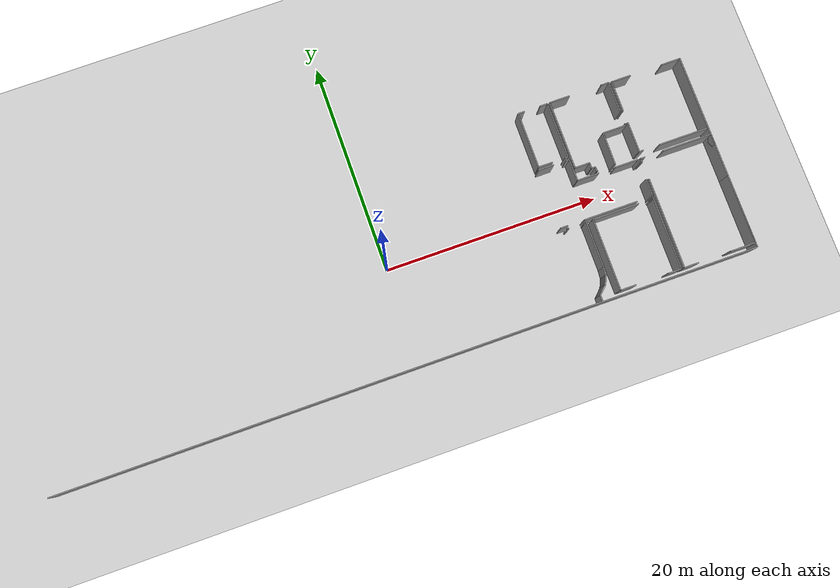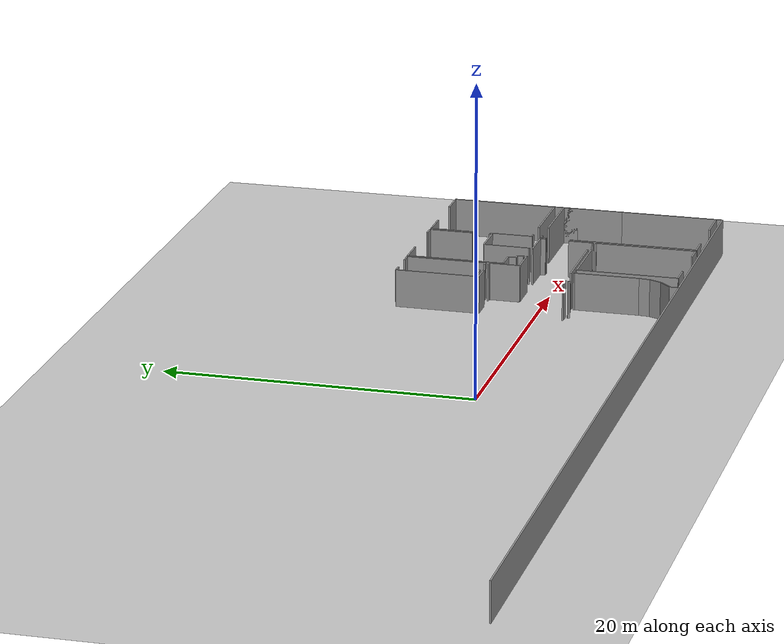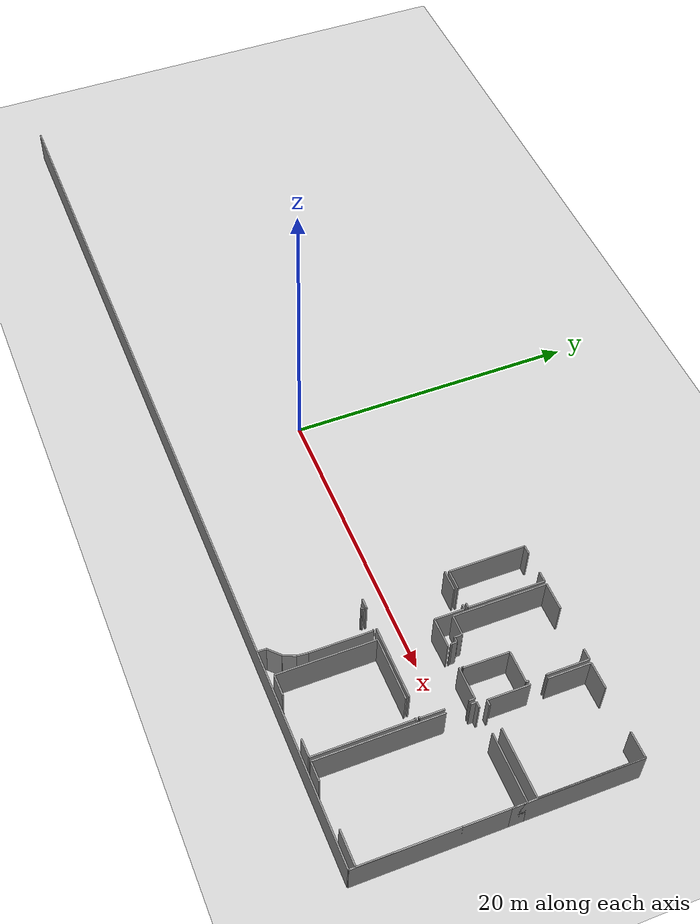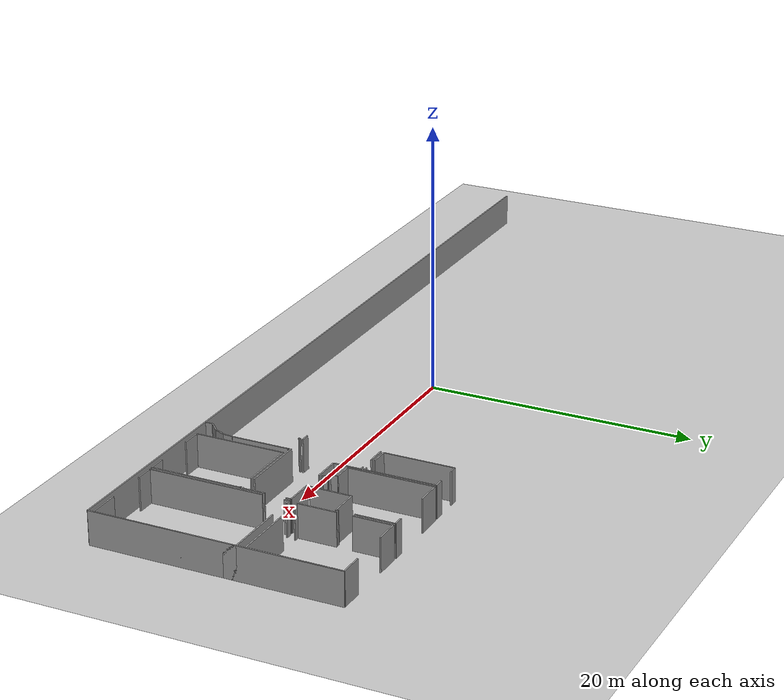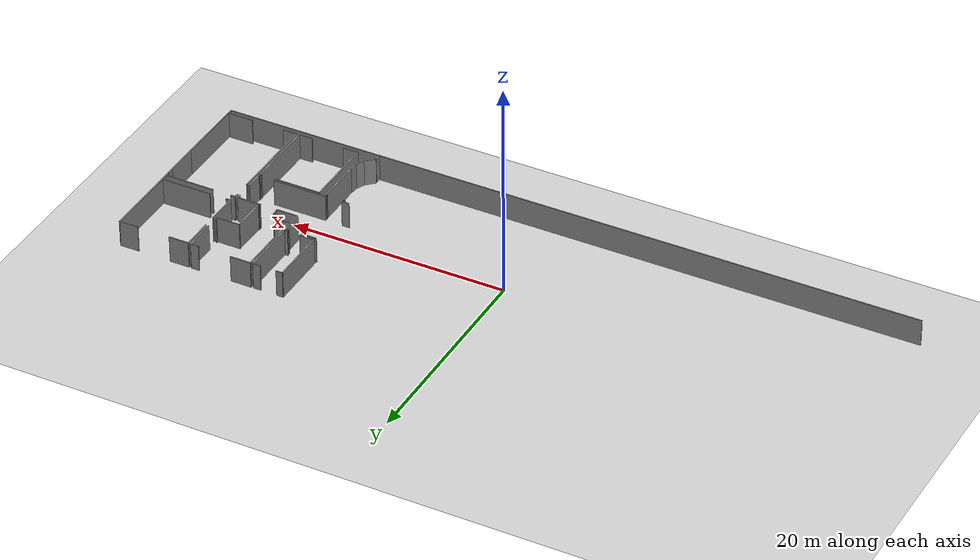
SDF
<sdf version="1.6">
 <world name="default">
  <model name="ground_plane">
   <static>1</static>
   <link name="link">
    <collision name="collision">
     <geometry><plane><normal>0 0 1</normal><size>100 100</size></plane></geometry>
     <surface><friction><ode><mu>100</mu><mu2>50</mu2></ode></friction></surface>
    </collision>
    <visual name="visual">
     <cast_shadows>0</cast_shadows>
     <geometry><plane><normal>0 0 1</normal><size>100 100</size></plane></geometry>
     <material>
      <script><uri>file://media/materials/scripts/gazebo.material</uri><name>Gazebo/Grey</name></script>
     </material>
    </visual>
   </link>
  </model>
  <model name="0510034870_A-40">
   <static>1</static>
   <link name="Wall_176">
    <collision name="Wall_176_Collision">
     <geometry><box><size>0.13214600801 0.1 2.5</size></box></geometry>
     <pose>0.066073004005 0 1.25 0 0 0</pose>
    </collision>
    <visual name="Wall_176_Visual">
     <pose>0.066073004005 0 1.25 0 0 0</pose>
     <geometry><box><size>0.13214600801 0.1 2.5</size></box></geometry>
     <material>
      <script><uri>file://media/materials/scripts/gazebo.material</uri><name>Gazebo/Grey</name></script>
      <ambient>1 1 1 1</ambient>
     </material>
    </visual>
    <pose>49.8676635799 -11.4529079104 0 0 0 1.57079632679</pose>
   </link>
   <link name="Wall_177">
    <collision name="Wall_177_Collision">
     <geometry><box><size>0.0987604171295 0.1 2.5</size></box></geometry>
     <pose>0.0493802085647 0 1.25 0 0 0</pose>
    </collision>
    <visual name="Wall_177_Visual">
     <pose>0.0493802085647 0 1.25 0 0 0</pose>
     <geometry><box><size>0.0987604171295 0.1 2.5</size></box></geometry>
     <material>
      <script><uri>file://media/materials/scripts/gazebo.material</uri><name>Gazebo/Grey</name></script>
      <ambient>1 1 1 1</ambient>
     </material>
    </visual>
    <pose>49.8676635799 -11.3207619023 0 0 0 0.0</pose>
   </link>
   <link name="Wall_178">
    <collision name="Wall_178_Collision">
     <geometry><box><size>0.0946982920033 0.1 2.5</size></box></geometry>
     <pose>0.0473491460017 0 1.25 0 0 0</pose>
    </collision>
    <visual name="Wall_178_Visual">
     <pose>0.0473491460017 0 1.25 0 0 0</pose>
     <geometry><box><size>0.0946982920033 0.1 2.5</size></box></geometry>
     <material>
      <script><uri>file://media/materials/scripts/gazebo.material</uri><name>Gazebo/Grey</name></script>
      <ambient>1 1 1 1</ambient>
     </material>
    </visual>
    <pose>51.5077465996 -11.3207619023 0 0 0 0.0</pose>
   </link>
   <link name="Wall_179">
    <collision name="Wall_179_Collision">
     <geometry><box><size>4.27513281245 0.1 2.5</size></box></geometry>
     <pose>2.13756640623 0 1.25 0 0 0</pose>
    </collision>
    <visual name="Wall_179_Visual">
     <pose>2.13756640623 0 1.25 0 0 0</pose>
     <geometry><box><size>4.27513281245 0.1 2.5</size></box></geometry>
     <material>
      <script><uri>file://media/materials/scripts/gazebo.material</uri><name>Gazebo/Grey</name></script>
      <ambient>1 1 1 1</ambient>
     </material>
    </visual>
    <pose>51.6024448916 -11.3207619023 0 0 0 -1.57079632679</pose>
   </link>
   <link name="Wall_180">
    <collision name="Wall_180_Collision">
     <geometry><box><size>0.733440796288 0.1 2.5</size></box></geometry>
     <pose>0.366720398144 0 1.25 0 0 0</pose>
    </collision>
    <visual name="Wall_180_Visual">
     <pose>0.366720398144 0 1.25 0 0 0</pose>
     <geometry><box><size>0.733440796288 0.1 2.5</size></box></geometry>
     <material>
      <script><uri>file://media/materials/scripts/gazebo.material</uri><name>Gazebo/Grey</name></script>
      <ambient>1 1 1 1</ambient>
     </material>
    </visual>
    <pose>51.6024448916 -15.5958947148 0 0 0 -1.66891502014</pose>
   </link>
   <link name="Wall_181">
    <collision name="Wall_181_Collision">
     <geometry><box><size>0.864874148767 0.1 2.5</size></box></geometry>
     <pose>0.432437074384 0 1.25 0 0 0</pose>
    </collision>
    <visual name="Wall_181_Visual">
     <pose>0.432437074384 0 1.25 0 0 0</pose>
     <geometry><box><size>0.864874148767 0.1 2.5</size></box></geometry>
     <material>
      <script><uri>file://media/materials/scripts/gazebo.material</uri><name>Gazebo/Grey</name></script>
      <ambient>1 1 1 1</ambient>
     </material>
    </visual>
    <pose>51.5305960534 -16.3258078234 0 0 0 -1.98900575369</pose>
   </link>
   <link name="Wall_182">
    <collision name="Wall_182_Collision">
     <geometry><box><size>1.04401392143 0.1 2.5</size></box></geometry>
     <pose>0.522006960714 0 1.25 0 0 0</pose>
    </collision>
    <visual name="Wall_182_Visual">
     <pose>0.522006960714 0 1.25 0 0 0</pose>
     <geometry><box><size>1.04401392143 0.1 2.5</size></box></geometry>
     <material>
      <script><uri>file://media/materials/scripts/gazebo.material</uri><name>Gazebo/Grey</name></script>
      <ambient>1 1 1 1</ambient>
     </material>
    </visual>
    <pose>51.1793491714 -17.1161450433 0 0 0 -2.37485257072</pose>
   </link>
   <link name="Wall_183">
    <collision name="Wall_183_Collision">
     <geometry><box><size>0.593286317472 0.1 2.5</size></box></geometry>
     <pose>0.296643158736 0 1.25 0 0 0</pose>
    </collision>
    <visual name="Wall_183_Visual">
     <pose>0.296643158736 0 1.25 0 0 0</pose>
     <geometry><box><size>0.593286317472 0.1 2.5</size></box></geometry>
     <material>
      <script><uri>file://media/materials/scripts/gazebo.material</uri><name>Gazebo/Grey</name></script>
      <ambient>1 1 1 1</ambient>
     </material>
    </visual>
    <pose>50.4274751988 -17.8404727298 0 0 0 -1.58812820978</pose>
   </link>
   <link name="Wall_184">
    <collision name="Wall_184_Collision">
     <geometry><box><size>0.109804319816 0.1 2.5</size></box></geometry>
     <pose>0.0549021599081 0 1.25 0 0 0</pose>
    </collision>
    <visual name="Wall_184_Visual">
     <pose>0.0549021599081 0 1.25 0 0 0</pose>
     <geometry><box><size>0.109804319816 0.1 2.5</size></box></geometry>
     <material>
      <script><uri>file://media/materials/scripts/gazebo.material</uri><name>Gazebo/Grey</name></script>
      <ambient>1 1 1 1</ambient>
     </material>
    </visual>
    <pose>58.0228875363 -11.1011532627 0 0 0 3.14159265359</pose>
   </link>
   <link name="Wall_185">
    <collision name="Wall_185_Collision">
     <geometry><box><size>5.02243689425 0.1 2.5</size></box></geometry>
     <pose>2.51121844713 0 1.25 0 0 0</pose>
    </collision>
    <visual name="Wall_185_Visual">
     <pose>2.51121844713 0 1.25 0 0 0</pose>
     <geometry><box><size>5.02243689425 0.1 2.5</size></box></geometry>
     <material>
      <script><uri>file://media/materials/scripts/gazebo.material</uri><name>Gazebo/Grey</name></script>
      <ambient>1 1 1 1</ambient>
     </material>
    </visual>
    <pose>56.5399579824 -11.1011532627 0 0 0 3.14159265359</pose>
   </link>
   <link name="Wall_186">
    <collision name="Wall_186_Collision">
     <geometry><box><size>0.704017060926 0.1 2.5</size></box></geometry>
     <pose>0.352008530463 0 1.25 0 0 0</pose>
    </collision>
    <visual name="Wall_186_Visual">
     <pose>0.352008530463 0 1.25 0 0 0</pose>
     <geometry><box><size>0.704017060926 0.1 2.5</size></box></geometry>
     <material>
      <script><uri>file://media/materials/scripts/gazebo.material</uri><name>Gazebo/Grey</name></script>
      <ambient>1 1 1 1</ambient>
     </material>
    </visual>
    <pose>49.9671856455 -11.1011532627 0 0 0 3.14159265359</pose>
   </link>
   <link name="Wall_188">
    <collision name="Wall_188_Collision">
     <geometry><box><size>1.44306995106 0.1 2.5</size></box></geometry>
     <pose>0.721534975532 0 1.25 0 0 0</pose>
    </collision>
    <visual name="Wall_188_Visual">
     <pose>0.721534975532 0 1.25 0 0 0</pose>
     <geometry><box><size>1.44306995106 0.1 2.5</size></box></geometry>
     <material>
      <script><uri>file://media/materials/scripts/gazebo.material</uri><name>Gazebo/Grey</name></script>
      <ambient>1 1 1 1</ambient>
     </material>
    </visual>
    <pose>49.2631685845 -5.51852392528 0 0 0 0.0</pose>
   </link>
   <link name="Wall_189">
    <collision name="Wall_189_Collision">
     <geometry><box><size>0.325604717143 0.1 2.5</size></box></geometry>
     <pose>0.162802358571 0 1.25 0 0 0</pose>
    </collision>
    <visual name="Wall_189_Visual">
     <pose>0.162802358571 0 1.25 0 0 0</pose>
     <geometry><box><size>0.325604717143 0.1 2.5</size></box></geometry>
     <material>
      <script><uri>file://media/materials/scripts/gazebo.material</uri><name>Gazebo/Grey</name></script>
      <ambient>1 1 1 1</ambient>
     </material>
    </visual>
    <pose>51.8861589433 -5.51852392528 0 0 0 0.0</pose>
   </link>
   <link name="Wall_190">
    <collision name="Wall_190_Collision">
     <geometry><box><size>2.03118950448 0.1 2.5</size></box></geometry>
     <pose>1.01559475224 0 1.25 0 0 0</pose>
    </collision>
    <visual name="Wall_190_Visual">
     <pose>1.01559475224 0 1.25 0 0 0</pose>
     <geometry><box><size>2.03118950448 0.1 2.5</size></box></geometry>
     <material>
      <script><uri>file://media/materials/scripts/gazebo.material</uri><name>Gazebo/Grey</name></script>
      <ambient>1 1 1 1</ambient>
     </material>
    </visual>
    <pose>52.2117636605 -5.51852392528 0 0 0 -1.57079632679</pose>
   </link>
   <link name="Wall_191">
    <collision name="Wall_191_Collision">
     <geometry><box><size>2.04489917678 0.1 2.5</size></box></geometry>
     <pose>1.02244958839 0 1.25 0 0 0</pose>
    </collision>
    <visual name="Wall_191_Visual">
     <pose>1.02244958839 0 1.25 0 0 0</pose>
     <geometry><box><size>2.04489917678 0.1 2.5</size></box></geometry>
     <material>
      <script><uri>file://media/materials/scripts/gazebo.material</uri><name>Gazebo/Grey</name></script>
      <ambient>1 1 1 1</ambient>
     </material>
    </visual>
    <pose>52.2117636605 -7.54971342977 0 0 0 0.0</pose>
   </link>
   <link name="Wall_192">
    <collision name="Wall_192_Collision">
     <geometry><box><size>2.20649559196 0.1 2.5</size></box></geometry>
     <pose>1.10324779598 0 1.25 0 0 0</pose>
    </collision>
    <visual name="Wall_192_Visual">
     <pose>1.10324779598 0 1.25 0 0 0</pose>
     <geometry><box><size>2.20649559196 0.1 2.5</size></box></geometry>
     <material>
      <script><uri>file://media/materials/scripts/gazebo.material</uri><name>Gazebo/Grey</name></script>
      <ambient>1 1 1 1</ambient>
     </material>
    </visual>
    <pose>55.8170266513 -7.54971342977 0 0 0 0.0</pose>
   </link>
   <link name="Wall_193">
    <collision name="Wall_193_Collision">
     <geometry><box><size>0.375873515579 0.1 2.5</size></box></geometry>
     <pose>0.187936757789 0 1.25 0 0 0</pose>
    </collision>
    <visual name="Wall_193_Visual">
     <pose>0.187936757789 0 1.25 0 0 0</pose>
     <geometry><box><size>0.375873515579 0.1 2.5</size></box></geometry>
     <material>
      <script><uri>file://media/materials/scripts/gazebo.material</uri><name>Gazebo/Grey</name></script>
      <ambient>1 1 1 1</ambient>
     </material>
    </visual>
    <pose>58.0235222433 -7.54971342977 0 0 0 -1.57079632679</pose>
   </link>
   <link name="Wall_194">
    <collision name="Wall_194_Collision">
     <geometry><box><size>1.62345381902 0.1 2.5</size></box></geometry>
     <pose>0.81172690951 0 1.25 0 0 0</pose>
    </collision>
    <visual name="Wall_194_Visual">
     <pose>0.81172690951 0 1.25 0 0 0</pose>
     <geometry><box><size>1.62345381902 0.1 2.5</size></box></geometry>
     <material>
      <script><uri>file://media/materials/scripts/gazebo.material</uri><name>Gazebo/Grey</name></script>
      <ambient>1 1 1 1</ambient>
     </material>
    </visual>
    <pose>58.0235222433 -9.47769956776 0 0 0 -1.57118728776</pose>
   </link>
   <link name="Wall_195">
    <collision name="Wall_195_Collision">
     <geometry><box><size>0.31735352548 0.1 2.5</size></box></geometry>
     <pose>0.15867676274 0 1.25 0 0 0</pose>
    </collision>
    <visual name="Wall_195_Visual">
     <pose>0.15867676274 0 1.25 0 0 0</pose>
     <geometry><box><size>0.31735352548 0.1 2.5</size></box></geometry>
     <material>
      <script><uri>file://media/materials/scripts/gazebo.material</uri><name>Gazebo/Grey</name></script>
      <ambient>1 1 1 1</ambient>
     </material>
    </visual>
    <pose>52.1881525582 -5.26197533528 0 0 0 3.14159265359</pose>
   </link>
   <link name="Wall_196">
    <collision name="Wall_196_Collision">
     <geometry><box><size>1.34380176829 0.1 2.5</size></box></geometry>
     <pose>0.671900884147 0 1.25 0 0 0</pose>
    </collision>
    <visual name="Wall_196_Visual">
     <pose>0.671900884147 0 1.25 0 0 0</pose>
     <geometry><box><size>1.34380176829 0.1 2.5</size></box></geometry>
     <material>
      <script><uri>file://media/materials/scripts/gazebo.material</uri><name>Gazebo/Grey</name></script>
      <ambient>1 1 1 1</ambient>
     </material>
    </visual>
    <pose>50.7092851294 -5.26197533528 0 0 0 3.14159265359</pose>
   </link>
   <link name="Wall_197">
    <collision name="Wall_197_Collision">
     <geometry><box><size>5.24661542465 0.1 2.5</size></box></geometry>
     <pose>2.62330771233 0 1.25 0 0 0</pose>
    </collision>
    <visual name="Wall_197_Visual">
     <pose>2.62330771233 0 1.25 0 0 0</pose>
     <geometry><box><size>5.24661542465 0.1 2.5</size></box></geometry>
     <material>
      <script><uri>file://media/materials/scripts/gazebo.material</uri><name>Gazebo/Grey</name></script>
      <ambient>1 1 1 1</ambient>
     </material>
    </visual>
    <pose>49.3654833612 -5.26197533528 0 0 0 1.57079632679</pose>
   </link>
   <link name="Wall_198">
    <collision name="Wall_198_Collision">
     <geometry><box><size>0.595482155211 0.1 2.5</size></box></geometry>
     <pose>0.297741077606 0 1.25 0 0 0</pose>
    </collision>
    <visual name="Wall_198_Visual">
     <pose>0.297741077606 0 1.25 0 0 0</pose>
     <geometry><box><size>0.595482155211 0.1 2.5</size></box></geometry>
     <material>
      <script><uri>file://media/materials/scripts/gazebo.material</uri><name>Gazebo/Grey</name></script>
      <ambient>1 1 1 1</ambient>
     </material>
    </visual>
    <pose>49.3654833612 -0.0153599106332 0 0 0 0.0</pose>
   </link>
   <link name="Wall_199">
    <collision name="Wall_199_Collision">
     <geometry><box><size>0.71341072528 0.1 2.5</size></box></geometry>
     <pose>0.35670536264 0 1.25 0 0 0</pose>
    </collision>
    <visual name="Wall_199_Visual">
     <pose>0.35670536264 0 1.25 0 0 0</pose>
     <geometry><box><size>0.71341072528 0.1 2.5</size></box></geometry>
     <material>
      <script><uri>file://media/materials/scripts/gazebo.material</uri><name>Gazebo/Grey</name></script>
      <ambient>1 1 1 1</ambient>
     </material>
    </visual>
    <pose>51.4647134615 -0.0153599106332 0 0 0 0.0</pose>
   </link>
   <link name="Wall_200">
    <collision name="Wall_200_Collision">
     <geometry><box><size>5.24662500875 0.1 2.5</size></box></geometry>
     <pose>2.62331250437 0 1.25 0 0 0</pose>
    </collision>
    <visual name="Wall_200_Visual">
     <pose>2.62331250437 0 1.25 0 0 0</pose>
     <geometry><box><size>5.24662500875 0.1 2.5</size></box></geometry>
     <material>
      <script><uri>file://media/materials/scripts/gazebo.material</uri><name>Gazebo/Grey</name></script>
      <ambient>1 1 1 1</ambient>
     </material>
    </visual>
    <pose>52.1781241868 -0.0153599106332 0 0 0 -1.5688849309</pose>
   </link>
   <link name="Wall_201">
    <collision name="Wall_201_Collision">
     <geometry><box><size>0.0948252334135 0.1 2.5</size></box></geometry>
     <pose>0.0474126167068 0 1.25 0 0 0</pose>
    </collision>
    <visual name="Wall_201_Visual">
     <pose>0.0474126167068 0 1.25 0 0 0</pose>
     <geometry><box><size>0.0948252334135 0.1 2.5</size></box></geometry>
     <material>
      <script><uri>file://media/materials/scripts/gazebo.material</uri><name>Gazebo/Grey</name></script>
      <ambient>1 1 1 1</ambient>
     </material>
    </visual>
    <pose>55.9114710605 -7.32324995398 0 0 0 3.14159265359</pose>
   </link>
   <link name="Wall_202">
    <collision name="Wall_202_Collision">
     <geometry><box><size>0.0917786395689 0.1 2.5</size></box></geometry>
     <pose>0.0458893197845 0 1.25 0 0 0</pose>
    </collision>
    <visual name="Wall_202_Visual">
     <pose>0.0458893197845 0 1.25 0 0 0</pose>
     <geometry><box><size>0.0917786395689 0.1 2.5</size></box></geometry>
     <material>
      <script><uri>file://media/materials/scripts/gazebo.material</uri><name>Gazebo/Grey</name></script>
      <ambient>1 1 1 1</ambient>
     </material>
    </visual>
    <pose>54.2482847042 -7.32324995398 0 0 0 3.14159265359</pose>
   </link>
   <link name="Wall_203">
    <collision name="Wall_203_Collision">
     <geometry><box><size>0.399611559285 0.1 2.5</size></box></geometry>
     <pose>0.199805779642 0 1.25 0 0 0</pose>
    </collision>
    <visual name="Wall_203_Visual">
     <pose>0.199805779642 0 1.25 0 0 0</pose>
     <geometry><box><size>0.399611559285 0.1 2.5</size></box></geometry>
     <material>
      <script><uri>file://media/materials/scripts/gazebo.material</uri><name>Gazebo/Grey</name></script>
      <ambient>1 1 1 1</ambient>
     </material>
    </visual>
    <pose>54.1565060646 -7.32324995398 0 0 0 1.57079632679</pose>
   </link>
   <link name="Wall_204">
    <collision name="Wall_204_Collision">
     <geometry><box><size>0.358990308023 0.1 2.5</size></box></geometry>
     <pose>0.179495154012 0 1.25 0 0 0</pose>
    </collision>
    <visual name="Wall_204_Visual">
     <pose>0.179495154012 0 1.25 0 0 0</pose>
     <geometry><box><size>0.358990308023 0.1 2.5</size></box></geometry>
     <material>
      <script><uri>file://media/materials/scripts/gazebo.material</uri><name>Gazebo/Grey</name></script>
      <ambient>1 1 1 1</ambient>
     </material>
    </visual>
    <pose>54.1565060646 -6.9236383947 0 0 0 3.14159265359</pose>
   </link>
   <link name="Wall_205">
    <collision name="Wall_205_Collision">
     <geometry><box><size>0.525791321016 0.1 2.5</size></box></geometry>
     <pose>0.262895660508 0 1.25 0 0 0</pose>
    </collision>
    <visual name="Wall_205_Visual">
     <pose>0.262895660508 0 1.25 0 0 0</pose>
     <geometry><box><size>0.525791321016 0.1 2.5</size></box></geometry>
     <material>
      <script><uri>file://media/materials/scripts/gazebo.material</uri><name>Gazebo/Grey</name></script>
      <ambient>1 1 1 1</ambient>
     </material>
    </visual>
    <pose>53.7975157566 -6.9236383947 0 0 0 1.57079632679</pose>
   </link>
   <link name="Wall_206">
    <collision name="Wall_206_Collision">
     <geometry><box><size>1.39381668391 0.1 2.5</size></box></geometry>
     <pose>0.696908341955 0 1.25 0 0 0</pose>
    </collision>
    <visual name="Wall_206_Visual">
     <pose>0.696908341955 0 1.25 0 0 0</pose>
     <geometry><box><size>1.39381668391 0.1 2.5</size></box></geometry>
     <material>
      <script><uri>file://media/materials/scripts/gazebo.material</uri><name>Gazebo/Grey</name></script>
      <ambient>1 1 1 1</ambient>
     </material>
    </visual>
    <pose>53.7975157566 -6.39784707368 0 0 0 3.14159265359</pose>
   </link>
   <link name="Wall_207">
    <collision name="Wall_207_Collision">
     <geometry><box><size>6.39784707368 0.1 2.5</size></box></geometry>
     <pose>3.19892353684 0 1.25 0 0 0</pose>
    </collision>
    <visual name="Wall_207_Visual">
     <pose>3.19892353684 0 1.25 0 0 0</pose>
     <geometry><box><size>6.39784707368 0.1 2.5</size></box></geometry>
     <material>
      <script><uri>file://media/materials/scripts/gazebo.material</uri><name>Gazebo/Grey</name></script>
      <ambient>1 1 1 1</ambient>
     </material>
    </visual>
    <pose>52.4036990727 -6.39784707368 0 0 0 1.57079632679</pose>
   </link>
   <link name="Wall_208">
    <collision name="Wall_208_Collision">
     <geometry><box><size>1.91097598903 0.1 2.5</size></box></geometry>
     <pose>0.955487994516 0 1.25 0 0 0</pose>
    </collision>
    <visual name="Wall_208_Visual">
     <pose>0.955487994516 0 1.25 0 0 0</pose>
     <geometry><box><size>1.91097598903 0.1 2.5</size></box></geometry>
     <material>
      <script><uri>file://media/materials/scripts/gazebo.material</uri><name>Gazebo/Grey</name></script>
      <ambient>1 1 1 1</ambient>
     </material>
    </visual>
    <pose>52.4036990727 -0.0 0 0 0 0.0</pose>
   </link>
   <link name="Wall_209">
    <collision name="Wall_209_Collision">
     <geometry><box><size>0.747557964621 0.1 2.5</size></box></geometry>
     <pose>0.373778982311 0 1.25 0 0 0</pose>
    </collision>
    <visual name="Wall_209_Visual">
     <pose>0.373778982311 0 1.25 0 0 0</pose>
     <geometry><box><size>0.747557964621 0.1 2.5</size></box></geometry>
     <material>
      <script><uri>file://media/materials/scripts/gazebo.material</uri><name>Gazebo/Grey</name></script>
      <ambient>1 1 1 1</ambient>
     </material>
    </visual>
    <pose>57.3775174068 -0.0 0 0 0 0.0</pose>
   </link>
   <link name="Wall_210">
    <collision name="Wall_210_Collision">
     <geometry><box><size>2.91228983263 0.1 2.5</size></box></geometry>
     <pose>1.45614491631 0 1.25 0 0 0</pose>
    </collision>
    <visual name="Wall_210_Visual">
     <pose>1.45614491631 0 1.25 0 0 0</pose>
     <geometry><box><size>2.91228983263 0.1 2.5</size></box></geometry>
     <material>
      <script><uri>file://media/materials/scripts/gazebo.material</uri><name>Gazebo/Grey</name></script>
      <ambient>1 1 1 1</ambient>
     </material>
    </visual>
    <pose>58.1250753715 -0.0 0 0 0 -1.57079632679</pose>
   </link>
   <link name="Wall_211">
    <collision name="Wall_211_Collision">
     <geometry><box><size>0.186603872982 0.1 2.5</size></box></geometry>
     <pose>0.0933019364912 0 1.25 0 0 0</pose>
    </collision>
    <visual name="Wall_211_Visual">
     <pose>0.0933019364912 0 1.25 0 0 0</pose>
     <geometry><box><size>0.186603872982 0.1 2.5</size></box></geometry>
     <material>
      <script><uri>file://media/materials/scripts/gazebo.material</uri><name>Gazebo/Grey</name></script>
      <ambient>1 1 1 1</ambient>
     </material>
    </visual>
    <pose>58.1250753715 -4.05463558295 0 0 0 -1.57079632679</pose>
   </link>
   <link name="Wall_212">
    <collision name="Wall_212_Collision">
     <geometry><box><size>2.18618496633 0.1 2.5</size></box></geometry>
     <pose>1.09309248316 0 1.25 0 0 0</pose>
    </collision>
    <visual name="Wall_212_Visual">
     <pose>1.09309248316 0 1.25 0 0 0</pose>
     <geometry><box><size>2.18618496633 0.1 2.5</size></box></geometry>
     <material>
      <script><uri>file://media/materials/scripts/gazebo.material</uri><name>Gazebo/Grey</name></script>
      <ambient>1 1 1 1</ambient>
     </material>
    </visual>
    <pose>58.1250753715 -4.24123945593 0 0 0 3.14159265359</pose>
   </link>
   <link name="Wall_213">
    <collision name="Wall_213_Collision">
     <geometry><box><size>3.0821324648 0.1 2.5</size></box></geometry>
     <pose>1.5410662324 0 1.25 0 0 0</pose>
    </collision>
    <visual name="Wall_213_Visual">
     <pose>1.5410662324 0 1.25 0 0 0</pose>
     <geometry><box><size>3.0821324648 0.1 2.5</size></box></geometry>
     <material>
      <script><uri>file://media/materials/scripts/gazebo.material</uri><name>Gazebo/Grey</name></script>
      <ambient>1 1 1 1</ambient>
     </material>
    </visual>
    <pose>55.9388904051 -4.24123945593 0 0 0 -1.57969266938</pose>
   </link>
   <link name="Wall_214">
    <collision name="Wall_214_Collision">
     <geometry><box><size>4.6555762188 0.1 2.5</size></box></geometry>
     <pose>2.3277881094 0 1.25 0 0 0</pose>
    </collision>
    <visual name="Wall_214_Visual">
     <pose>2.3277881094 0 1.25 0 0 0</pose>
     <geometry><box><size>4.6555762188 0.1 2.5</size></box></geometry>
     <material>
      <script><uri>file://media/materials/scripts/gazebo.material</uri><name>Gazebo/Grey</name></script>
      <ambient>1 1 1 1</ambient>
     </material>
    </visual>
    <pose>65.001618503 -6.9148794374 0 0 0 3.14159265359</pose>
   </link>
   <link name="Wall_215">
    <collision name="Wall_215_Collision">
     <geometry><box><size>0.394153078647 0.1 2.5</size></box></geometry>
     <pose>0.197076539323 0 1.25 0 0 0</pose>
    </collision>
    <visual name="Wall_215_Visual">
     <pose>0.197076539323 0 1.25 0 0 0</pose>
     <geometry><box><size>0.394153078647 0.1 2.5</size></box></geometry>
     <material>
      <script><uri>file://media/materials/scripts/gazebo.material</uri><name>Gazebo/Grey</name></script>
      <ambient>1 1 1 1</ambient>
     </material>
    </visual>
    <pose>58.768922204 -6.9148794374 0 0 0 3.14159265359</pose>
   </link>
   <link name="Wall_216">
    <collision name="Wall_216_Collision">
     <geometry><box><size>2.85415066676 0.1 2.5</size></box></geometry>
     <pose>1.42707533338 0 1.25 0 0 0</pose>
    </collision>
    <visual name="Wall_216_Visual">
     <pose>1.42707533338 0 1.25 0 0 0</pose>
     <geometry><box><size>2.85415066676 0.1 2.5</size></box></geometry>
     <material>
      <script><uri>file://media/materials/scripts/gazebo.material</uri><name>Gazebo/Grey</name></script>
      <ambient>1 1 1 1</ambient>
     </material>
    </visual>
    <pose>58.3747691253 -6.9148794374 0 0 0 1.57079632679</pose>
   </link>
   <link name="Wall_217">
    <collision name="Wall_217_Collision">
     <geometry><box><size>2.89845321892 0.1 2.5</size></box></geometry>
     <pose>1.44922660946 0 1.25 0 0 0</pose>
    </collision>
    <visual name="Wall_217_Visual">
     <pose>1.44922660946 0 1.25 0 0 0</pose>
     <geometry><box><size>2.89845321892 0.1 2.5</size></box></geometry>
     <material>
      <script><uri>file://media/materials/scripts/gazebo.material</uri><name>Gazebo/Grey</name></script>
      <ambient>1 1 1 1</ambient>
     </material>
    </visual>
    <pose>58.3747691253 -2.92485703224 0 0 0 1.57079632679</pose>
   </link>
   <link name="Wall_218">
    <collision name="Wall_218_Collision">
     <geometry><box><size>1.8433162174 0.1 2.5</size></box></geometry>
     <pose>0.9216581087 0 1.25 0 0 0</pose>
    </collision>
    <visual name="Wall_218_Visual">
     <pose>0.9216581087 0 1.25 0 0 0</pose>
     <geometry><box><size>1.8433162174 0.1 2.5</size></box></geometry>
     <material>
      <script><uri>file://media/materials/scripts/gazebo.material</uri><name>Gazebo/Grey</name></script>
      <ambient>1 1 1 1</ambient>
     </material>
    </visual>
    <pose>58.3747691253 -0.02640381332 0 0 0 0.0</pose>
   </link>
   <link name="Wall_219">
    <collision name="Wall_219_Collision">
     <geometry><box><size>1.75077592937 0.1 2.5</size></box></geometry>
     <pose>0.875387964685 0 1.25 0 0 0</pose>
    </collision>
    <visual name="Wall_219_Visual">
     <pose>0.875387964685 0 1.25 0 0 0</pose>
     <geometry><box><size>1.75077592937 0.1 2.5</size></box></geometry>
     <material>
      <script><uri>file://media/materials/scripts/gazebo.material</uri><name>Gazebo/Grey</name></script>
      <ambient>1 1 1 1</ambient>
     </material>
    </visual>
    <pose>63.2639175389 -0.02640381332 0 0 0 0.0</pose>
   </link>
   <link name="Wall_220">
    <collision name="Wall_220_Collision">
     <geometry><box><size>6.88848803281 0.1 2.5</size></box></geometry>
     <pose>3.44424401641 0 1.25 0 0 0</pose>
    </collision>
    <visual name="Wall_220_Visual">
     <pose>3.44424401641 0 1.25 0 0 0</pose>
     <geometry><box><size>6.88848803281 0.1 2.5</size></box></geometry>
     <material>
      <script><uri>file://media/materials/scripts/gazebo.material</uri><name>Gazebo/Grey</name></script>
      <ambient>1 1 1 1</ambient>
     </material>
    </visual>
    <pose>65.0146934682 -0.02640381332 0 0 0 -1.57269441721</pose>
   </link>
   <link name="Wall_221">
    <collision name="Wall_221_Collision">
     <geometry><box><size>2.35222433086 0.1 2.5</size></box></geometry>
     <pose>1.17611216543 0 1.25 0 0 0</pose>
    </collision>
    <visual name="Wall_221_Visual">
     <pose>1.17611216543 0 1.25 0 0 0</pose>
     <geometry><box><size>2.35222433086 0.1 2.5</size></box></geometry>
     <material>
      <script><uri>file://media/materials/scripts/gazebo.material</uri><name>Gazebo/Grey</name></script>
      <ambient>1 1 1 1</ambient>
     </material>
    </visual>
    <pose>65.0207866559 -18.0108281023 0 0 0 3.14159265359</pose>
   </link>
   <link name="Wall_222">
    <collision name="Wall_222_Collision">
     <geometry><box><size>1.3426592956 0.1 2.5</size></box></geometry>
     <pose>0.671329647801 0 1.25 0 0 0</pose>
    </collision>
    <visual name="Wall_222_Visual">
     <pose>0.671329647801 0 1.25 0 0 0</pose>
     <geometry><box><size>1.3426592956 0.1 2.5</size></box></geometry>
     <material>
      <script><uri>file://media/materials/scripts/gazebo.material</uri><name>Gazebo/Grey</name></script>
      <ambient>1 1 1 1</ambient>
     </material>
    </visual>
    <pose>59.6129556403 -18.0108281023 0 0 0 3.14159265359</pose>
   </link>
   <link name="Wall_223">
    <collision name="Wall_223_Collision">
     <geometry><box><size>8.49974294364 0.1 2.5</size></box></geometry>
     <pose>4.24987147182 0 1.25 0 0 0</pose>
    </collision>
    <visual name="Wall_223_Visual">
     <pose>4.24987147182 0 1.25 0 0 0</pose>
     <geometry><box><size>8.49974294364 0.1 2.5</size></box></geometry>
     <material>
      <script><uri>file://media/materials/scripts/gazebo.material</uri><name>Gazebo/Grey</name></script>
      <ambient>1 1 1 1</ambient>
     </material>
    </visual>
    <pose>58.2702963447 -18.0108281023 0 0 0 1.57079632679</pose>
   </link>
   <link name="Wall_224">
    <collision name="Wall_224_Collision">
     <geometry><box><size>0.383870824421 0.1 2.5</size></box></geometry>
     <pose>0.19193541221 0 1.25 0 0 0</pose>
    </collision>
    <visual name="Wall_224_Visual">
     <pose>0.19193541221 0 1.25 0 0 0</pose>
     <geometry><box><size>0.383870824421 0.1 2.5</size></box></geometry>
     <material>
      <script><uri>file://media/materials/scripts/gazebo.material</uri><name>Gazebo/Grey</name></script>
      <ambient>1 1 1 1</ambient>
     </material>
    </visual>
    <pose>58.2702963447 -7.93358425419 0 0 0 1.57079632679</pose>
   </link>
   <link name="Wall_225">
    <collision name="Wall_225_Collision">
     <geometry><box><size>0.401642621848 0.1 2.5</size></box></geometry>
     <pose>0.200821310924 0 1.25 0 0 0</pose>
    </collision>
    <visual name="Wall_225_Visual">
     <pose>0.200821310924 0 1.25 0 0 0</pose>
     <geometry><box><size>0.401642621848 0.1 2.5</size></box></geometry>
     <material>
      <script><uri>file://media/materials/scripts/gazebo.material</uri><name>Gazebo/Grey</name></script>
      <ambient>1 1 1 1</ambient>
     </material>
    </visual>
    <pose>58.2702963447 -7.54971342977 0 0 0 0.0</pose>
   </link>
   <link name="Wall_226">
    <collision name="Wall_226_Collision">
     <geometry><box><size>4.59896034985 0.1 2.5</size></box></geometry>
     <pose>2.29948017493 0 1.25 0 0 0</pose>
    </collision>
    <visual name="Wall_226_Visual">
     <pose>2.29948017493 0 1.25 0 0 0</pose>
     <geometry><box><size>4.59896034985 0.1 2.5</size></box></geometry>
     <material>
      <script><uri>file://media/materials/scripts/gazebo.material</uri><name>Gazebo/Grey</name></script>
      <ambient>1 1 1 1</ambient>
     </material>
    </visual>
    <pose>60.4331240916 -7.54971342977 0 0 0 0.0</pose>
   </link>
   <link name="Wall_227">
    <collision name="Wall_227_Collision">
     <geometry><box><size>0.976560268608 0.1 2.5</size></box></geometry>
     <pose>0.488280134304 0 1.25 0 0 0</pose>
    </collision>
    <visual name="Wall_227_Visual">
     <pose>0.488280134304 0 1.25 0 0 0</pose>
     <geometry><box><size>0.976560268608 0.1 2.5</size></box></geometry>
     <material>
      <script><uri>file://media/materials/scripts/gazebo.material</uri><name>Gazebo/Grey</name></script>
      <ambient>1 1 1 1</ambient>
     </material>
    </visual>
    <pose>65.0320844414 -7.54971342977 0 0 0 -1.57079632679</pose>
   </link>
   <link name="Wall_228">
    <collision name="Wall_228_Collision">
     <geometry><box><size>6.43098870557 0.1 2.5</size></box></geometry>
     <pose>3.21549435279 0 1.25 0 0 0</pose>
    </collision>
    <visual name="Wall_228_Visual">
     <pose>3.21549435279 0 1.25 0 0 0</pose>
     <geometry><box><size>6.43098870557 0.1 2.5</size></box></geometry>
     <material>
      <script><uri>file://media/materials/scripts/gazebo.material</uri><name>Gazebo/Grey</name></script>
      <ambient>1 1 1 1</ambient>
     </material>
    </visual>
    <pose>65.0320844414 -11.5798493205 0 0 0 -1.57255310042</pose>
   </link>
   <link name="Wall_229">
    <collision name="Wall_229_Collision">
     <geometry><box><size>1.24351805424 0.1 2.5</size></box></geometry>
     <pose>0.621759027121 0 1.25 0 0 0</pose>
    </collision>
    <visual name="Wall_229_Visual">
     <pose>0.621759027121 0 1.25 0 0 0</pose>
     <geometry><box><size>1.24351805424 0.1 2.5</size></box></geometry>
     <material>
      <script><uri>file://media/materials/scripts/gazebo.material</uri><name>Gazebo/Grey</name></script>
      <ambient>1 1 1 1</ambient>
     </material>
    </visual>
    <pose>58.004227149 -18.0162865829 0 0 0 3.14159265359</pose>
   </link>
   <link name="Wall_230">
    <collision name="Wall_230_Collision">
     <geometry><box><size>1.4560179749 0.1 2.5</size></box></geometry>
     <pose>0.728008987452 0 1.25 0 0 0</pose>
    </collision>
    <visual name="Wall_230_Visual">
     <pose>0.728008987452 0 1.25 0 0 0</pose>
     <geometry><box><size>1.4560179749 0.1 2.5</size></box></geometry>
     <material>
      <script><uri>file://media/materials/scripts/gazebo.material</uri><name>Gazebo/Grey</name></script>
      <ambient>1 1 1 1</ambient>
     </material>
    </visual>
    <pose>53.7203353792 -18.0162865829 0 0 0 3.14159265359</pose>
   </link>
   <link name="Wall_231">
    <collision name="Wall_231_Collision">
     <geometry><box><size>6.68676572328 0.1 2.5</size></box></geometry>
     <pose>3.34338286164 0 1.25 0 0 0</pose>
    </collision>
    <visual name="Wall_231_Visual">
     <pose>3.34338286164 0 1.25 0 0 0</pose>
     <geometry><box><size>6.68676572328 0.1 2.5</size></box></geometry>
     <material>
      <script><uri>file://media/materials/scripts/gazebo.material</uri><name>Gazebo/Grey</name></script>
      <ambient>1 1 1 1</ambient>
     </material>
    </visual>
    <pose>52.2643174043 -18.0162865829 0 0 0 1.57079632679</pose>
   </link>
   <link name="Wall_232">
    <collision name="Wall_232_Collision">
     <geometry><box><size>4.31143805577 0.1 2.5</size></box></geometry>
     <pose>2.15571902788 0 1.25 0 0 0</pose>
    </collision>
    <visual name="Wall_232_Visual">
     <pose>2.15571902788 0 1.25 0 0 0</pose>
     <geometry><box><size>4.31143805577 0.1 2.5</size></box></geometry>
     <material>
      <script><uri>file://media/materials/scripts/gazebo.material</uri><name>Gazebo/Grey</name></script>
      <ambient>1 1 1 1</ambient>
     </material>
    </visual>
    <pose>52.2643174043 -11.3295208596 0 0 0 0.0</pose>
   </link>
   <link name="Wall_233">
    <collision name="Wall_233_Collision">
     <geometry><box><size>0.108788788535 0.1 2.5</size></box></geometry>
     <pose>0.0543943942673 0 1.25 0 0 0</pose>
    </collision>
    <visual name="Wall_233_Visual">
     <pose>0.0543943942673 0 1.25 0 0 0</pose>
     <geometry><box><size>0.108788788535 0.1 2.5</size></box></geometry>
     <material>
      <script><uri>file://media/materials/scripts/gazebo.material</uri><name>Gazebo/Grey</name></script>
      <ambient>1 1 1 1</ambient>
     </material>
    </visual>
    <pose>57.8928995322 -11.3295208596 0 0 0 0.0</pose>
   </link>
   <link name="Wall_234">
    <collision name="Wall_234_Collision">
     <geometry><box><size>6.68676620525 0.1 2.5</size></box></geometry>
     <pose>3.34338310263 0 1.25 0 0 0</pose>
    </collision>
    <visual name="Wall_234_Visual">
     <pose>3.34338310263 0 1.25 0 0 0</pose>
     <geometry><box><size>6.68676620525 0.1 2.5</size></box></geometry>
     <material>
      <script><uri>file://media/materials/scripts/gazebo.material</uri><name>Gazebo/Grey</name></script>
      <ambient>1 1 1 1</ambient>
     </material>
    </visual>
    <pose>58.0016883208 -11.3295208596 0 0 0 -1.57041664726</pose>
   </link>
   <link name="Wall_235">
    <collision name="Wall_235_Collision">
     <geometry><box><size>18.4376051234 0.1 2.5</size></box></geometry>
     <pose>9.21880256168 0 1.25 0 0 0</pose>
    </collision>
    <visual name="Wall_235_Visual">
     <pose>9.21880256168 0 1.25 0 0 0</pose>
     <geometry><box><size>18.4376051234 0.1 2.5</size></box></geometry>
     <material>
      <script><uri>file://media/materials/scripts/gazebo.material</uri><name>Gazebo/Grey</name></script>
      <ambient>1 1 1 1</ambient>
     </material>
    </visual>
    <pose>65.0320844414 -18.4376051234 0 0 0 1.57079632679</pose>
   </link>
   <link name="Wall_236">
    <collision name="Wall_236_Collision">
     <geometry><box><size>65.0320844414 0.1 2.5</size></box></geometry>
     <pose>32.5160422207 0 1.25 0 0 0</pose>
    </collision>
    <visual name="Wall_236_Visual">
     <pose>32.5160422207 0 1.25 0 0 0</pose>
     <geometry><box><size>65.0320844414 0.1 2.5</size></box></geometry>
     <material>
      <script><uri>file://media/materials/scripts/gazebo.material</uri><name>Gazebo/Grey</name></script>
      <ambient>1 1 1 1</ambient>
     </material>
    </visual>
    <pose>65.0320844414 -18.4376051234 0 0 0 3.14159265359</pose>
   </link>
   <pose>-33.6 9.23760512336 0 0 0 0</pose>
  </model>
 </world>
</sdf>
